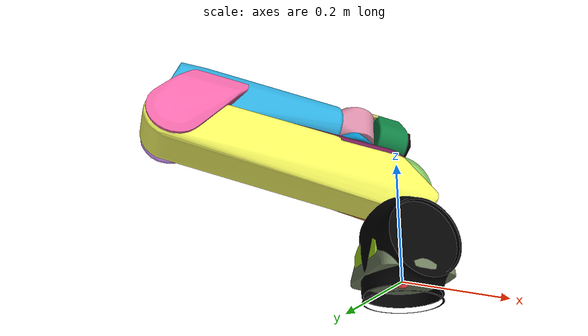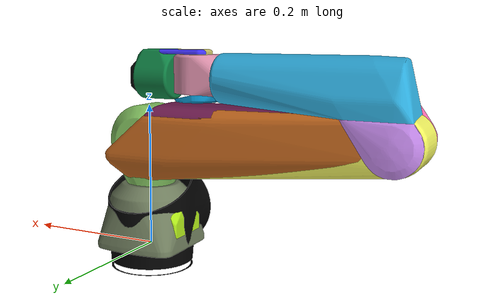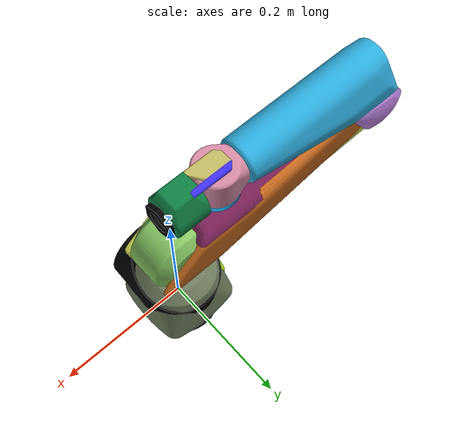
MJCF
<mujoco model="Galaxea A1">
	<compiler angle="radian"/>

	<asset>
		<material name="black" specular="0.5" shininess="0.25" rgba="0.010000 0.010000 0.010000 1.000000"/>
		<material name="motor" specular="0.5" shininess="0.25" rgba="0.000000 0.000000 0.000000 1.000000"/>
		<material name="grey" specular="0.5" shininess="0.25" rgba="0.64706 0.64706 0.64706 1.000000"/>

		<!-- base link -->
		<mesh name="base_link_0" file="meshes/base_link/base_link_0.obj"/>
		<mesh name="base_link_1" file="meshes/base_link/base_link_1.obj"/>
		<mesh name="base_link_collision_0" file="meshes/base_link/base_link_collision_0.obj"/>
		<mesh name="base_link_collision_1" file="meshes/base_link/base_link_collision_1.obj"/>
		<mesh name="base_link_collision_2" file="meshes/base_link/base_link_collision_2.obj"/>

		<!-- link1 -->
		<mesh name="link1_0" file="meshes/link1/link1_0.obj"/>
		<mesh name="link1_1" file="meshes/link1/link1_1.obj"/>
		<mesh name="link1_collision_0" file="meshes/link1/link1_collision_0.obj"/>
		<mesh name="link1_collision_1" file="meshes/link1/link1_collision_1.obj"/>
		<mesh name="link1_collision_2" file="meshes/link1/link1_collision_2.obj"/>

		<!-- link2 -->
		<mesh name="link2_0" file="meshes/link2/link2_0.obj"/>
		<mesh name="link2_1" file="meshes/link2/link2_1.obj"/>
		<mesh name="link2_2" file="meshes/link2/link2_2.obj"/>
		<mesh name="link2_collision_0" file="meshes/link2/link2_collision_0.obj"/>
		<mesh name="link2_collision_1" file="meshes/link2/link2_collision_1.obj"/>
		<mesh name="link2_collision_2" file="meshes/link2/link2_collision_2.obj"/>

		<!-- link3 -->
		<mesh name="link3_0" file="meshes/link3/link3_0.obj"/>
		<mesh name="link3_1" file="meshes/link3/link3_1.obj"/>
		<mesh name="link3_2" file="meshes/link3/link3_2.obj"/>
		<mesh name="link3_collision_0" file="meshes/link3/link3_collision_0.obj"/>
		<mesh name="link3_collision_1" file="meshes/link3/link3_collision_1.obj"/>
		<mesh name="link3_collision_2" file="meshes/link3/link3_collision_2.obj"/>

		<!-- link4 -->
		<mesh name="link4_0" file="meshes/link4/link4_0.obj"/>
		<mesh name="link4_1" file="meshes/link4/link4_1.obj"/>
		<mesh name="link4_collision_0" file="meshes/link4/link4_collision_0.obj"/>
		<mesh name="link4_collision_1" file="meshes/link4/link4_collision_1.obj"/>
		<mesh name="link4_collision_2" file="meshes/link4/link4_collision_2.obj"/>

		<!-- link5 -->
		<mesh name="link5_0" file="meshes/link5/link5_0.obj"/>
		<mesh name="link5_1" file="meshes/link5/link5_1.obj"/>
		<mesh name="link5_collision_0" file="meshes/link5/link5_collision_0.obj"/>
		<mesh name="link5_collision_1" file="meshes/link5/link5_collision_1.obj"/>
		<mesh name="link5_collision_2" file="meshes/link5/link5_collision_2.obj"/>

		<!-- link6 -->
		<mesh name="link6" file="meshes/link6/link6.obj"/>
		<mesh name="link6_collision_0" file="meshes/link6/link6_collision_0.obj"/>
		<mesh name="link6_collision_1" file="meshes/link6/link6_collision_1.obj"/>
		<mesh name="link6_collision_2" file="meshes/link6/link6_collision_2.obj"/>

	</asset>

	<default>
		<default class="visual">
			<geom group="1" type="mesh" contype="0" conaffinity="0"/>
		</default>
		<default class="collision">
			<geom group="0" type="mesh"/>
		</default>
	</default>

	<actuator>
		<!-- Physical limits of the actuator. -->
		<motor ctrllimited="true" ctrlrange="-100.0 100.0" joint="joint1" name="torq_j1"/>
		<motor ctrllimited="true" ctrlrange="-100.0 100.0" joint="joint2" name="torq_j2"/>
		<motor ctrllimited="true" ctrlrange="-100.0 100.0" joint="joint3" name="torq_j3"/>
		<motor ctrllimited="true" ctrlrange="-100.0 100.0" joint="joint4" name="torq_j4"/>
		<motor ctrllimited="true" ctrlrange="-100.0 100.0" joint="joint5" name="torq_j5"/>
		<motor ctrllimited="true" ctrlrange="-100.0 100.0" joint="joint6" name="torq_j6"/>
	</actuator>

	<worldbody>
		<body name="base">
			<camera mode="fixed" name="robotview" pos="1.0 0 0.4" quat="0.653 0.271 0.271 0.653"/>
			<body name="base_link">

				<inertial diaginertia="0.0010597 0.0011787 0.0010647" mass="1.658" pos="-0.0005634 0.038934 3.1874E-06"/>
				<site name="right_center" size="0.01" rgba="1 0.3 0.3 1" group="2"/>

				<geom mesh="base_link_0" material="motor" class="visual"/>
				<geom mesh="base_link_1" material="black" class="visual"/>
				<geom mesh="base_link_collision_0" rgba="0.4331778839690461 0.4877962710706687 0.3655170383335624 1"
				      class="collision"/>
				<geom mesh="base_link_collision_1" rgba="0.6687147122767946 0.8905735722337424 0.09843310537861616 1"
				      class="collision"/>
				<geom mesh="base_link_collision_2" rgba="0.7520854787753262 0.1188855795709417 0.5589360629656317 1"
				      class="collision"/>

				<body name="link1" pos="-0.0011147 0 0.0446">
					<inertial pos="1.5e-05 0.105259 -0.001954" quat="0.425878 0.564472 -0.564472 0.425878" mass="1.164"
					          diaginertia="0.00116457 0.001125 0.00107743"/>
					<joint name="joint1" axis="0 0 1" range="-2.8798 2.8798" actuatorfrcrange="-100 100"/>

					<geom mesh="link1_0" material="motor" class="visual"/>
					<geom mesh="link1_1" material="black" class="visual"/>
					<geom mesh="link1_collision_0" rgba="0.5230486207126424 0.778495896718945 0.38503028294818875 1"
					      class="collision"/>
					<geom mesh="link1_collision_1" rgba="0.8567010142983327 0.8251508690912455 0.1922683064173506 1"
					      class="collision"/>
					<geom mesh="link1_collision_2" rgba="0.2405949017184219 0.44088074416465894 0.31877192221321793 1"
					      class="collision"/>

					<body name="link2" pos="0 0 0.1061" quat="0.707107 0.707107 0 0">
						<inertial pos="-0.23622 0.016352 -0.00013275" quat="0.504619 0.524708 0.485168 0.484411" mass="1.3"
						          diaginertia="0.00761855 0.00757439 0.000578234"/>
						<joint name="joint2" axis="0 0 -1" range="0 3.2289" actuatorfrcrange="-100 100"/>

						<geom mesh="link2_0" material="black" class="visual"/>
						<geom mesh="link2_1" material="motor" class="visual"/>
						<geom mesh="link2_2" material="grey" class="visual"/>
						<geom mesh="link2_collision_0" rgba="0.4629060343214093 0.12308657047978677 0.334296503180354 1"
						      class="collision"/>
						<geom mesh="link2_collision_1" rgba="0.9374423810981808 0.9468226740143371 0.36683696821229184 1"
						      class="collision"/>
						<geom mesh="link2_collision_2" rgba="0.7823442137638349 0.41601930001441567 0.12161585868803826 1"
						      class="collision"/>

						<body name="link3" pos="-0.34928 0.019998 0">
							<inertial pos="0.045114 0.054616 -0.00045593" quat="-0.145228 0.702719 0.0362285 0.695545" mass="0.818"
							          diaginertia="0.00150398 0.00145383 0.000541868"/>
							<joint name="joint3" axis="0 0 -1" range="-3.3161 0" actuatorfrcrange="-100 100"/>

							<geom mesh="link3_0" material="motor" class="visual"/>
							<geom mesh="link3_1" material="grey" class="visual"/>
							<geom mesh="link3_2" material="black" class="visual"/>
							<geom mesh="link3_collision_0" rgba="0.18166325934728045 0.6818579342314387 0.8729516873001225 1"
							      class="collision"/>
							<geom mesh="link3_collision_1" rgba="0.9514900604630003 0.4069959948033167 0.6661750306415102 1"
							      class="collision"/>
							<geom mesh="link3_collision_2" rgba="0.8275554498359582 0.5816993970410771 0.9875911631800544 1"
							      class="collision"/>

							<body name="link4" pos="0.02735 0.069767 0">
								<inertial pos="0.24285 0.0023784 1.279e-06" quat="0.487657 0.488169 0.511479 0.512124" mass="0.698"
								          diaginertia="0.00010178 9.7044e-05 8.44605e-05"/>
								<joint name="joint4" actuatorfrcrange="-100 100" axis="1 0 0" range="-2.8798 2.8798"/>

								<geom mesh="link4_0" material="motor" class="visual"/>
								<geom mesh="link4_1" material="black" class="visual"/>
								<geom mesh="link4_collision_0" rgba="0.033347092989259974 0.5690396994961491 0.786211814116892 1"
								      class="collision"/>
								<geom mesh="link4_collision_1" rgba="0.835619732753674 0.5436405581025638 0.6461089557071991 1"
								      class="collision"/>
								<geom mesh="link4_collision_2" rgba="0.5736430487347081 0.1614275370995717 0.6122248163855408 1"
								      class="collision"/>

								<body name="link5" pos="0.2463 -0.00049894 0">
									<inertial pos="0.054309 0.0041811 4.0699e-06" quat="0.202727 0.679304 -0.198547 0.676777" mass="0.417"
									          diaginertia="0.00011333 0.000109027 7.34692e-05"/>
									<joint name="joint5" actuatorfrcrange="-100 100" axis="0 1 0" range="-1.6581 1.6581"/>

									<geom mesh="link5_0" material="motor" class="visual"/>
									<geom mesh="link5_1" material="grey" class="visual"/>
									<geom mesh="link5_collision_0" rgba="0.056732522005117136 0.49932444327517167 0.26256382908716536 1"
									      class="collision"/>
									<geom mesh="link5_collision_1" rgba="0.24766867215585708 0.1925553015136292 0.9567682814346915 1"
									      class="collision"/>
									<geom mesh="link5_collision_2" rgba="0.763161237107978 0.7278542540324074 0.3860185885263592 1"
									      class="collision"/>

									<body name="link6" pos="0.058249 0.00050025 0">
										<inertial pos="0.028138 1.2134E-07 5.4049E-08"
										          mass="0.037"
										          diaginertia="3.5662E-06 2.0238E-06 2.0238E-06"/>
										<joint name="joint6" axis="1 0 0" range="-2.8798 2.8798" actuatorfrcrange="-100 100"/>

										<geom material="black" mesh="link6" class="visual"/>

										<body name="right_hand" pos="0.0339 0 0">
											<camera mode="fixed" name="eye_in_hand" pos="0.06 0 0.05" quat="0 0.707108 0.707108 0" fovy="75"/>
										</body>
									</body>
								</body>
							</body>
						</body>
					</body>
				</body>
			</body>
		</body>
	</worldbody>

	<contact>
		<exclude body1="base_link" body2="link1"/>
		<exclude body1="link1" body2="link2"/>
		<exclude body1="link2" body2="link3"/>
		<exclude body1="link3" body2="link4"/>
		<exclude body1="link4" body2="link5"/>
		<exclude body1="link5" body2="link6"/>
	</contact>
</mujoco>
